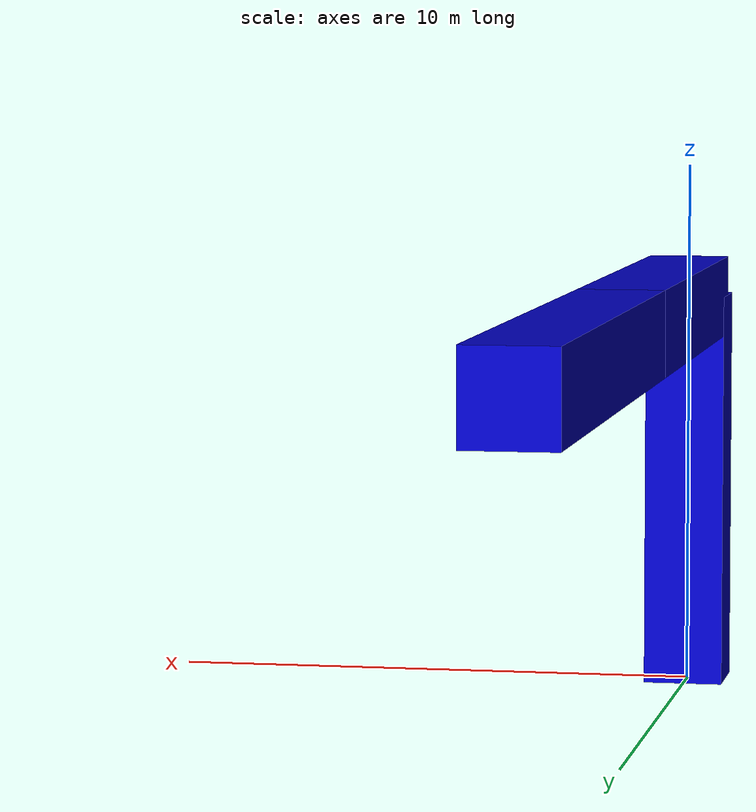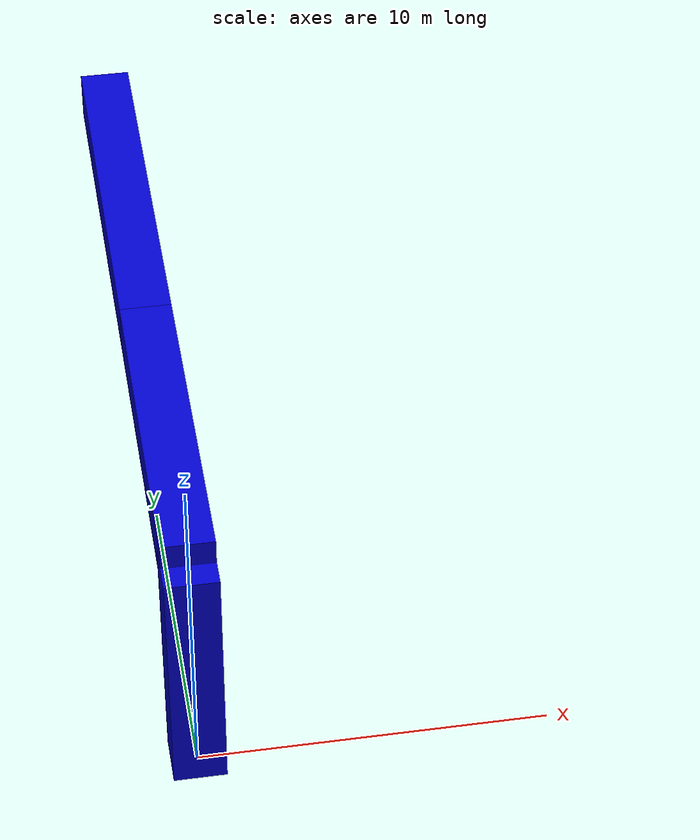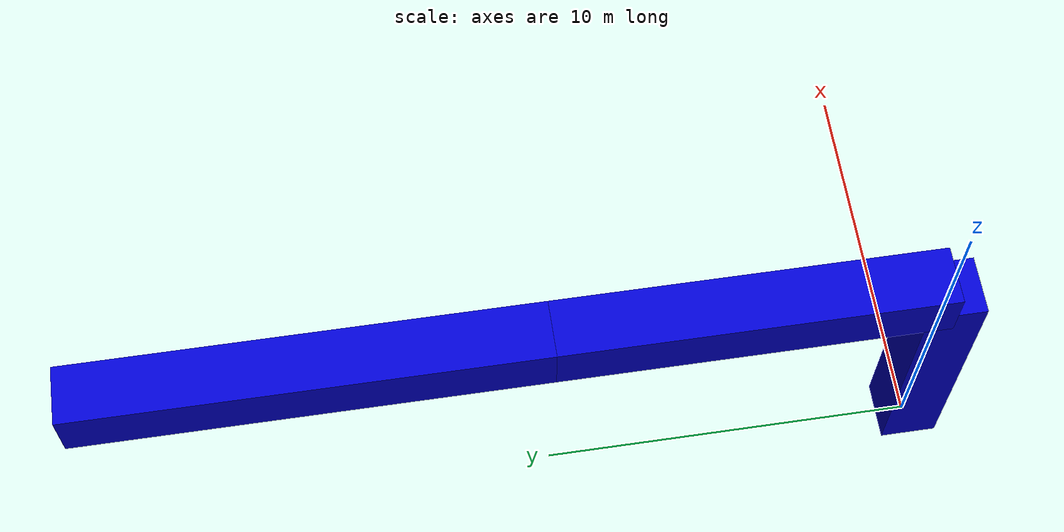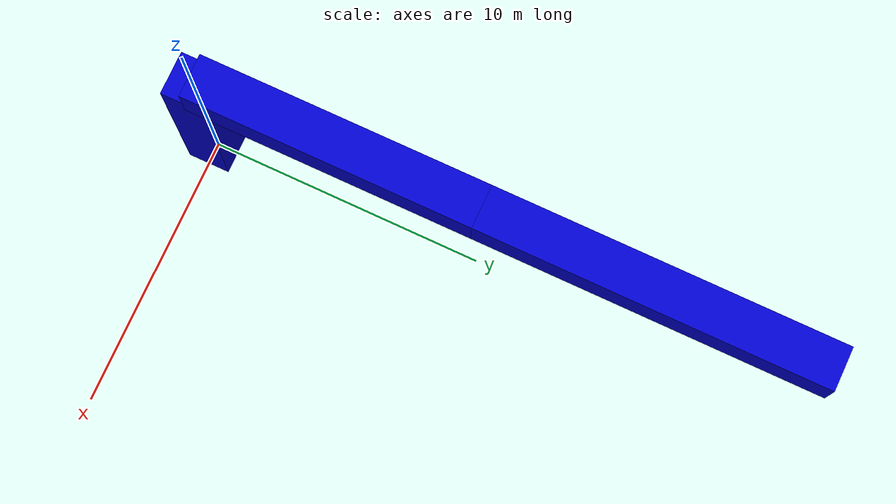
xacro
<?xml version="1.0" ?>
<robot name="arm_bot" xmlns:xacro="http://www.ros.org/wiki/xacro">
  <!-- This is all in cm and radians -->
  <xacro:property name="l1" value="10" />
  <xacro:property name="l2" value="12" />
  <xacro:property name="base_height" value="7.5" />
  <xacro:property name="zero" value="1e-12" />
  <xacro:property name="link_w" value="1.5" />
  <xacro:property name="link_h" value="1.5" />

  <link name="world"/>
  <link name="end_effector_link"/>

  <link name="base1">
    <visual>
        <geometry>
            <box size="${zero} ${zero} ${zero}" />
        </geometry>
        <material name="blue">
            <color rgba="0 0 .8 1" />
        </material>
    </visual>
    <collision>
        <geometry>
            <box size="${zero} ${zero} ${zero}" />
        </geometry>
    </collision>

    <inertial>
        <mass value="0.1" />
        <inertia ixx="0.03" iyy="0.03" izz="0.03" ixy="0.0" ixz="0.0" iyz="0.0" />
    </inertial>
  </link>

  <link name="base2">
    <visual>
        <origin rpy="0 0 0" xyz="0 0 ${base_height/2}" />
        <geometry>
            <box size="${link_w} ${link_h} ${base_height}" />
        </geometry>
        <material name="blue">
            <color rgba="0 0 .8 1" />
        </material>
    </visual>
    <collision>
        <origin rpy="0 0 0" xyz="0 0 ${base_height/2}" />
        <geometry>
            <box size="${link_w} ${link_h} ${base_height}" />
        </geometry>
    </collision>

    <inertial>
        <mass value="0.1" />
        <inertia ixx="0.03" iyy="0.03" izz="0.03" ixy="0.0" ixz="0.0" iyz="0.0" />
    </inertial>
  </link>

  <link name="link1">
    <visual>
        <origin rpy="0 0 0" xyz="0 ${l1/2} 0" />
        <geometry>
            <box size="${link_w} ${l1} ${link_h}" />
        </geometry>
        <material name="blue">
            <color rgba="0 0 .8 1" />
        </material>
    </visual>
    <collision>
        <origin rpy="0 0 0" xyz="0 ${l1/2} 0" />
        <geometry>
            <box size="${link_w} ${l1} ${link_h}" />
        </geometry>
    </collision>

    <inertial>
        <mass value="0.1" />
        <inertia ixx="0.03" iyy="0.03" izz="0.03" ixy="0.0" ixz="0.0" iyz="0.0" />
    </inertial>
  </link>

  <link name="link2">
    <visual>
        <origin rpy="0 0 0" xyz="0 ${l2/2} 0" />
        <geometry>
            <box size="${link_w} ${l2} ${link_h}" />
        </geometry>
        <material name="blue">
            <color rgba="0 0 .8 1" />
        </material>
    </visual>
    <collision>
        <origin rpy="0 0 0" xyz="0 ${l2/2} 0" />
        <geometry>
            <box size="${link_w} ${l2} ${link_h}" />
        </geometry>
    </collision>

    <inertial>
        <mass value="0.1" />
        <inertia ixx="0.03" iyy="0.03" izz="0.03" ixy="0.0" ixz="0.0" iyz="0.0" />
    </inertial>
  </link>

  <joint name="fixed" type="fixed">
    <parent link="world"/>
    <child link="base1"/>
  </joint>
  <joint name="base_rotate" type="continuous">
      <parent link="base1" />
      <child link="base2" />
      <origin rpy="0 0 0" xyz="0 0 0" />
      <axis xyz="0 0 1" />
  </joint>
  <joint name="joint1" type="revolute">
      <parent link="base2" />
      <child link="link1" />
      <origin rpy="0 0 0" xyz="0 0 ${base_height}" />
      <axis xyz="1 0 0" />
      <limit lower="0" upper="3.14" effort="100" velocity="3" />
      <!-- Effort is between 0 and 100 (units are %) and velocity is radians per second -->
  </joint>
  <joint name="joint2" type="revolute">
    <parent link="link1" />
    <child link="link2" />
    <origin rpy="0 0 0" xyz="0 ${l1} 0" />
    <axis xyz="1 0 0" />
    <limit lower="-1.57" upper="1.57" effort="100" velocity="3"/>
    <!-- Effort is between 0 and 100 (units are %) and velocity is radians per second -->
  </joint>
  <joint name="end_effector_joint" type="fixed">
      <parent link="link2" />
      <child link="end_effector_link" />
      <origin rpy="0 0 0" xyz="0 ${l2} 0" />
  </joint>

  <transmission name="trans_base_rotate">
      <type>transmission_interface/SimpleTransmission</type>
      <joint name="base_rotate">
          <hardwareInterface>hardware_interface/EffortJointInterface</hardwareInterface>
      </joint>
      <actuator name="base_rotate_motor">
          <hardwareInterface>hardware_interface/EffortJointInterface</hardwareInterface>
          <mechanicalReduction>1</mechanicalReduction>
      </actuator>
  </transmission>
  <transmission name="trans_joint1">
      <type>transmission_interface/SimpleTransmission</type>
      <joint name="joint1">
          <hardwareInterface>hardware_interface/EffortJointInterface</hardwareInterface>
      </joint>
      <actuator name="joint1_motor">
          <hardwareInterface>hardware_interface/EffortJointInterface</hardwareInterface>
          <mechanicalReduction>1</mechanicalReduction>
      </actuator>
  </transmission>
  <transmission name="trans_joint2">
      <type>transmission_interface/SimpleTransmission</type>
      <joint name="joint2">
          <hardwareInterface>hardware_interface/EffortJointInterface</hardwareInterface>
      </joint>
      <actuator name="joint2_motor">
          <hardwareInterface>hardware_interface/EffortJointInterface</hardwareInterface>
          <mechanicalReduction>1</mechanicalReduction>
      </actuator>
  </transmission>
  <gazebo>
      <plugin name="gazebo_ros_control" filename="libgazebo_ros_control.so">
          <robotNamespace>/</robotNamespace>
      </plugin>
  </gazebo>
</robot>
